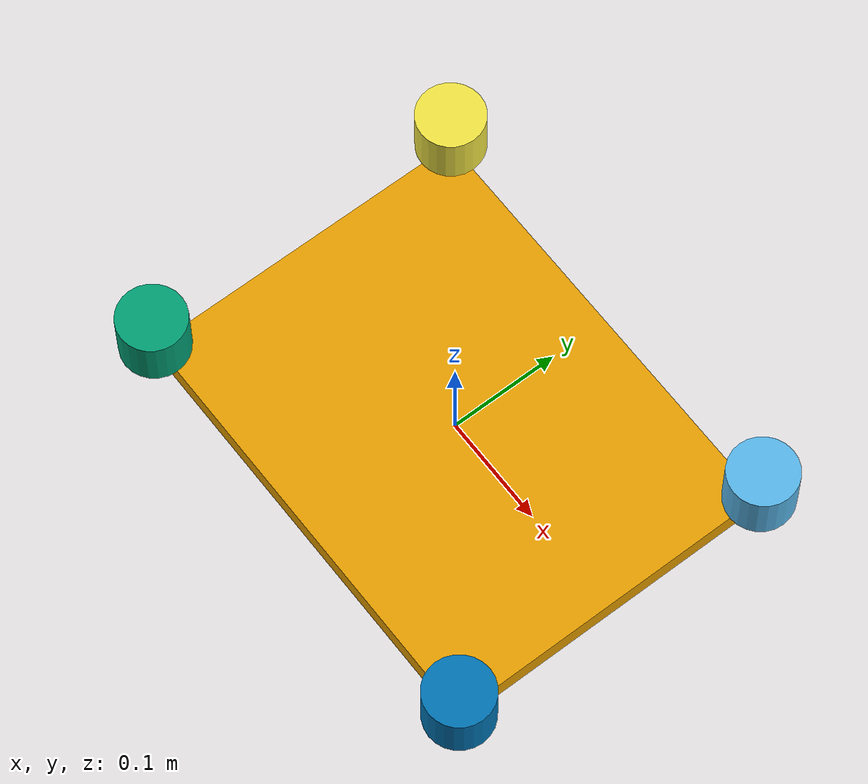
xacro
<?xml version="1.0"?>
<robot name="lidar_fusion">

  <link name="base_link">
    <visual>
      <geometry>
        <box size="0.4 0.3 0.02"/>
      </geometry>
    </visual>

    <collision>
      <geometry>
        <box size="0.4 0.3 0.02"/>
      </geometry>
    </collision>

    <inertial>
      <mass value="1.0"/>
      <inertia
        ixx="0.01" ixy="0.0" ixz="0.0"
        iyy="0.01" iyz="0.0"
        izz="0.01"/>
    </inertial>
  </link>

  <link name="lidar_A">
    <visual>
      <geometry>
        <cylinder radius="0.03" length="0.05"/>
      </geometry>
    </visual>
  </link>

  <link name="lidar_B">
    <visual>
      <geometry>
        <cylinder radius="0.03" length="0.05"/>
      </geometry>

    </visual>
  </link>

  <link name="lidar_C">
    <visual>
      <geometry>
        <cylinder radius="0.03" length="0.05"/>
      </geometry>

    </visual>
  </link>

  <link name="lidar_D">
    <visual>
      <geometry>
        <cylinder radius="0.03" length="0.05"/>
      </geometry>

    </visual>
  </link>

  <joint name="base_to_lidar_A" type="fixed">
    <parent link="base_link"/>
    <child link="lidar_A"/>

    <origin xyz="0.2 0.15 0.035" rpy="0 0 0.7854"/>
  </joint>

  <joint name="base_to_lidar_B" type="fixed">
    <parent link="base_link"/>
    <child link="lidar_B"/>

    <origin xyz="-0.2 -0.15 0.035" rpy="0 0 -2.3562"/>
  </joint>

  <joint name="base_to_lidar_C" type="fixed">
    <parent link="base_link"/>
    <child link="lidar_C"/>

    <origin xyz="-0.2 0.15 0.035" rpy="0 0 2.3562"/>
  </joint>

   <joint name="base_to_lidar_D" type="fixed">
    <parent link="base_link"/>
    <child link="lidar_D"/>

    <origin xyz="0.2 -0.15 0.035" rpy="0 0 -0.7854"/>
  </joint>

    <gazebo>
    <plugin
        filename="gz-sim-sensors-system"
        name="gz::sim::systems::Sensors">
    </plugin>
    </gazebo>

<gazebo reference="lidar_A">
  <sensor name="lidar_A_sensor" type="gpu_lidar">
    <always_on>true</always_on>
    <update_rate>15</update_rate>
    <topic>lidar_A/scan</topic>
    <gz_frame_id>lidar_A</gz_frame_id>
    <lidar>
      <scan>
        <horizontal>
          <samples>360</samples>
          <min_angle>-1.5708</min_angle>
          <max_angle>1.5708</max_angle>
        </horizontal>
      </scan>
      <range>
        <min>0.12</min>
        <max>10.0</max>
      </range>
    </lidar>
  </sensor>
</gazebo>

<gazebo reference="lidar_B">
  <sensor name="lidar_B_sensor" type="gpu_lidar">
    <always_on>true</always_on>
    <update_rate>15</update_rate>
    <topic>lidar_B/scan</topic>
    <gz_frame_id>lidar_B</gz_frame_id>
    <lidar>
      <scan>
        <horizontal>
          <samples>360</samples>
          <min_angle>-1.5708</min_angle>
          <max_angle>1.5708</max_angle>
        </horizontal>
      </scan>
      <range>
        <min>0.12</min>
        <max>10.0</max>
      </range>
    </lidar>
  </sensor>
</gazebo>

<gazebo reference="lidar_C">
  <sensor name="lidar_C_sensor" type="gpu_lidar">
    <always_on>true</always_on>
    <update_rate>15</update_rate>
    <topic>lidar_C/scan</topic>
    <gz_frame_id>lidar_C</gz_frame_id>
    <lidar>
      <scan>
        <horizontal>
          <samples>360</samples>
          <min_angle>-1.5708</min_angle>
          <max_angle>1.5708</max_angle>
        </horizontal>
      </scan>
      <range>
        <min>0.12</min>
        <max>10.0</max>
      </range>
    </lidar>
  </sensor>
</gazebo>

<gazebo reference="lidar_D">
  <sensor name="lidar_D_sensor" type="gpu_lidar">
    <always_on>true</always_on>
    <update_rate>15</update_rate>
    <topic>lidar_D/scan</topic>
    <gz_frame_id>lidar_D</gz_frame_id>
    <lidar>
      <scan>
        <horizontal>
          <samples>360</samples>
          <min_angle>-1.5708</min_angle>
          <max_angle>1.5708</max_angle>
        </horizontal>
      </scan>
      <range>
        <min>0.12</min>
        <max>10.0</max>
      </range>
    </lidar>
  </sensor>
</gazebo>

</robot>
